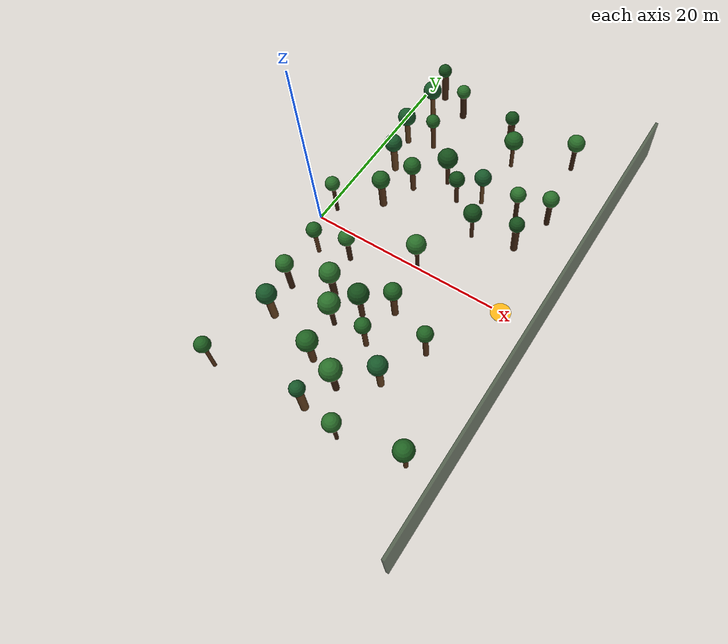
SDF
<sdf version="1.6">
 <world name="ego_forest_50x50x5">
  <include><uri>model://sun</uri></include>
  <model name="east_boundary">
   <static>true</static>
   <pose>24.850 0.000 2.500 0 0 0</pose>
   <link name="link">
    <collision name="collision"><geometry><box><size>0.300 50.000 5.000</size></box></geometry></collision>
    <visual name="visual">
     <geometry><box><size>0.300 50.000 5.000</size></box></geometry>
     <material><ambient>0.080 0.160 0.070 1.000</ambient><diffuse>0.080 0.160 0.070 1.000</diffuse></material>
     <transparency>0.35</transparency>
    </visual>
   </link>
  </model>
  <model name="east_edge_goal_marker">
   <static>true</static>
   <pose>21.000 0.000 0.006 0 0 0</pose>
   <link name="link">
    <visual name="visual">
     <geometry><cylinder><radius>1.0</radius><length>0.01</length></cylinder></geometry>
     <material><ambient>0.95 0.68 0.08 1</ambient><diffuse>0.95 0.68 0.08 1</diffuse></material>
    </visual>
   </link>
  </model>
  <model name="tree_001">
   <static>true</static>
   <pose>18.539 7.010 0 0 0 0</pose>
   <link name="tree_link">
    <collision name="trunk_collision">
     <pose>0 0 2.312 0 0 0</pose>
     <geometry><cylinder><radius>0.361</radius><length>4.624</length></cylinder></geometry>
    </collision>
    <visual name="trunk_visual">
     <pose>0 0 2.312 0 0 0</pose>
     <geometry><cylinder><radius>0.361</radius><length>4.624</length></cylinder></geometry>
     <material><ambient>0.290 0.160 0.080 1.000</ambient><diffuse>0.290 0.160 0.080 1.000</diffuse></material>
    </visual>
    <visual name="crown_visual">
     <pose>0 0 4.074 0 0 0</pose>
     <geometry><sphere><radius>0.776</radius></sphere></geometry>
     <material><ambient>0.080 0.300 0.100 1.000</ambient><diffuse>0.080 0.300 0.100 1.000</diffuse></material>
    </visual>
   </link>
  </model>
  <model name="tree_002">
   <static>true</static>
   <pose>12.092 -9.422 0 0 0 0</pose>
   <link name="tree_link">
    <collision name="trunk_collision">
     <pose>0 0 2.164 0 0 0</pose>
     <geometry><cylinder><radius>0.254</radius><length>4.328</length></cylinder></geometry>
    </collision>
    <visual name="trunk_visual">
     <pose>0 0 2.164 0 0 0</pose>
     <geometry><cylinder><radius>0.254</radius><length>4.328</length></cylinder></geometry>
     <material><ambient>0.360 0.210 0.100 1.000</ambient><diffuse>0.360 0.210 0.100 1.000</diffuse></material>
    </visual>
    <visual name="crown_visual">
     <pose>0 0 3.778 0 0 0</pose>
     <geometry><sphere><radius>0.774</radius></sphere></geometry>
     <material><ambient>0.120 0.380 0.130 1.000</ambient><diffuse>0.120 0.380 0.130 1.000</diffuse></material>
    </visual>
   </link>
  </model>
  <model name="tree_003">
   <static>true</static>
   <pose>5.260 19.407 0 0 0 0</pose>
   <link name="tree_link">
    <collision name="trunk_collision">
     <pose>0 0 2.167 0 0 0</pose>
     <geometry><cylinder><radius>0.351</radius><length>4.334</length></cylinder></geometry>
    </collision>
    <visual name="trunk_visual">
     <pose>0 0 2.167 0 0 0</pose>
     <geometry><cylinder><radius>0.351</radius><length>4.334</length></cylinder></geometry>
     <material><ambient>0.240 0.130 0.060 1.000</ambient><diffuse>0.240 0.130 0.060 1.000</diffuse></material>
    </visual>
    <visual name="crown_visual">
     <pose>0 0 3.784 0 0 0</pose>
     <geometry><sphere><radius>0.731</radius></sphere></geometry>
     <material><ambient>0.160 0.430 0.160 1.000</ambient><diffuse>0.160 0.430 0.160 1.000</diffuse></material>
    </visual>
   </link>
  </model>
  <model name="tree_006">
   <static>true</static>
   <pose>17.306 -7.336 0 0 0 0</pose>
   <link name="tree_link">
    <collision name="trunk_collision">
     <pose>0 0 2.280 0 0 0</pose>
     <geometry><cylinder><radius>0.265</radius><length>4.559</length></cylinder></geometry>
    </collision>
    <visual name="trunk_visual">
     <pose>0 0 2.280 0 0 0</pose>
     <geometry><cylinder><radius>0.265</radius><length>4.559</length></cylinder></geometry>
     <material><ambient>0.360 0.210 0.100 1.000</ambient><diffuse>0.360 0.210 0.100 1.000</diffuse></material>
    </visual>
    <visual name="crown_visual">
     <pose>0 0 4.009 0 0 0</pose>
     <geometry><sphere><radius>0.777</radius></sphere></geometry>
     <material><ambient>0.120 0.380 0.130 1.000</ambient><diffuse>0.120 0.380 0.130 1.000</diffuse></material>
    </visual>
   </link>
  </model>
  <model name="tree_008">
   <static>true</static>
   <pose>10.973 -17.323 0 0 0 0</pose>
   <link name="tree_link">
    <collision name="trunk_collision">
     <pose>0 0 2.387 0 0 0</pose>
     <geometry><cylinder><radius>0.377</radius><length>4.774</length></cylinder></geometry>
    </collision>
    <visual name="trunk_visual">
     <pose>0 0 2.387 0 0 0</pose>
     <geometry><cylinder><radius>0.377</radius><length>4.774</length></cylinder></geometry>
     <material><ambient>0.420 0.270 0.130 1.000</ambient><diffuse>0.420 0.270 0.130 1.000</diffuse></material>
    </visual>
    <visual name="crown_visual">
     <pose>0 0 4.224 0 0 0</pose>
     <geometry><sphere><radius>0.726</radius></sphere></geometry>
     <material><ambient>0.090 0.340 0.160 1.000</ambient><diffuse>0.090 0.340 0.160 1.000</diffuse></material>
    </visual>
   </link>
  </model>
  <model name="tree_012">
   <static>true</static>
   <pose>2.064 13.158 0 0 0 0</pose>
   <link name="tree_link">
    <collision name="trunk_collision">
     <pose>0 0 2.213 0 0 0</pose>
     <geometry><cylinder><radius>0.291</radius><length>4.426</length></cylinder></geometry>
    </collision>
    <visual name="trunk_visual">
     <pose>0 0 2.213 0 0 0</pose>
     <geometry><cylinder><radius>0.291</radius><length>4.426</length></cylinder></geometry>
     <material><ambient>0.420 0.270 0.130 1.000</ambient><diffuse>0.420 0.270 0.130 1.000</diffuse></material>
    </visual>
    <visual name="crown_visual">
     <pose>0 0 3.876 0 0 0</pose>
     <geometry><sphere><radius>0.937</radius></sphere></geometry>
     <material><ambient>0.090 0.340 0.160 1.000</ambient><diffuse>0.090 0.340 0.160 1.000</diffuse></material>
    </visual>
   </link>
  </model>
  <model name="tree_022">
   <static>true</static>
   <pose>4.446 4.775 0 0 0 0</pose>
   <link name="tree_link">
    <collision name="trunk_collision">
     <pose>0 0 2.256 0 0 0</pose>
     <geometry><cylinder><radius>0.369</radius><length>4.512</length></cylinder></geometry>
    </collision>
    <visual name="trunk_visual">
     <pose>0 0 2.256 0 0 0</pose>
     <geometry><cylinder><radius>0.369</radius><length>4.512</length></cylinder></geometry>
     <material><ambient>0.360 0.210 0.100 1.000</ambient><diffuse>0.360 0.210 0.100 1.000</diffuse></material>
    </visual>
    <visual name="crown_visual">
     <pose>0 0 3.962 0 0 0</pose>
     <geometry><sphere><radius>0.907</radius></sphere></geometry>
     <material><ambient>0.120 0.380 0.130 1.000</ambient><diffuse>0.120 0.380 0.130 1.000</diffuse></material>
    </visual>
   </link>
  </model>
  <model name="tree_023">
   <static>true</static>
   <pose>0.818 1.703 0 0 0 0</pose>
   <link name="tree_link">
    <collision name="trunk_collision">
     <pose>0 0 2.425 0 0 0</pose>
     <geometry><cylinder><radius>0.203</radius><length>4.850</length></cylinder></geometry>
    </collision>
    <visual name="trunk_visual">
     <pose>0 0 2.425 0 0 0</pose>
     <geometry><cylinder><radius>0.203</radius><length>4.850</length></cylinder></geometry>
     <material><ambient>0.240 0.130 0.060 1.000</ambient><diffuse>0.240 0.130 0.060 1.000</diffuse></material>
    </visual>
    <visual name="crown_visual">
     <pose>0 0 4.267 0 0 0</pose>
     <geometry><sphere><radius>0.733</radius></sphere></geometry>
     <material><ambient>0.160 0.430 0.160 1.000</ambient><diffuse>0.160 0.430 0.160 1.000</diffuse></material>
    </visual>
   </link>
  </model>
  <model name="tree_024">
   <static>true</static>
   <pose>2.426 17.642 0 0 0 0</pose>
   <link name="tree_link">
    <collision name="trunk_collision">
     <pose>0 0 2.457 0 0 0</pose>
     <geometry><cylinder><radius>0.273</radius><length>4.914</length></cylinder></geometry>
    </collision>
    <visual name="trunk_visual">
     <pose>0 0 2.457 0 0 0</pose>
     <geometry><cylinder><radius>0.273</radius><length>4.914</length></cylinder></geometry>
     <material><ambient>0.420 0.270 0.130 1.000</ambient><diffuse>0.420 0.270 0.130 1.000</diffuse></material>
    </visual>
    <visual name="crown_visual">
     <pose>0 0 4.040 0 0 0</pose>
     <geometry><sphere><radius>0.960</radius></sphere></geometry>
     <material><ambient>0.090 0.340 0.160 1.000</ambient><diffuse>0.090 0.340 0.160 1.000</diffuse></material>
    </visual>
   </link>
  </model>
  <model name="tree_027">
   <static>true</static>
   <pose>11.479 0.292 0 0 0 0</pose>
   <link name="tree_link">
    <collision name="trunk_collision">
     <pose>0 0 2.146 0 0 0</pose>
     <geometry><cylinder><radius>0.199</radius><length>4.291</length></cylinder></geometry>
    </collision>
    <visual name="trunk_visual">
     <pose>0 0 2.146 0 0 0</pose>
     <geometry><cylinder><radius>0.199</radius><length>4.291</length></cylinder></geometry>
     <material><ambient>0.240 0.130 0.060 1.000</ambient><diffuse>0.240 0.130 0.060 1.000</diffuse></material>
    </visual>
    <visual name="crown_visual">
     <pose>0 0 3.741 0 0 0</pose>
     <geometry><sphere><radius>0.969</radius></sphere></geometry>
     <material><ambient>0.160 0.430 0.160 1.000</ambient><diffuse>0.160 0.430 0.160 1.000</diffuse></material>
    </visual>
   </link>
  </model>
  <model name="tree_029">
   <static>true</static>
   <pose>14.214 6.063 0 0 0 0</pose>
   <link name="tree_link">
    <collision name="trunk_collision">
     <pose>0 0 2.226 0 0 0</pose>
     <geometry><cylinder><radius>0.203</radius><length>4.453</length></cylinder></geometry>
    </collision>
    <visual name="trunk_visual">
     <pose>0 0 2.226 0 0 0</pose>
     <geometry><cylinder><radius>0.203</radius><length>4.453</length></cylinder></geometry>
     <material><ambient>0.290 0.160 0.080 1.000</ambient><diffuse>0.290 0.160 0.080 1.000</diffuse></material>
    </visual>
    <visual name="crown_visual">
     <pose>0 0 3.903 0 0 0</pose>
     <geometry><sphere><radius>0.914</radius></sphere></geometry>
     <material><ambient>0.080 0.300 0.100 1.000</ambient><diffuse>0.080 0.300 0.100 1.000</diffuse></material>
    </visual>
   </link>
  </model>
  <model name="tree_030">
   <static>true</static>
   <pose>13.200 16.079 0 0 0 0</pose>
   <link name="tree_link">
    <collision name="trunk_collision">
     <pose>0 0 2.247 0 0 0</pose>
     <geometry><cylinder><radius>0.206</radius><length>4.494</length></cylinder></geometry>
    </collision>
    <visual name="trunk_visual">
     <pose>0 0 2.247 0 0 0</pose>
     <geometry><cylinder><radius>0.206</radius><length>4.494</length></cylinder></geometry>
     <material><ambient>0.360 0.210 0.100 1.000</ambient><diffuse>0.360 0.210 0.100 1.000</diffuse></material>
    </visual>
    <visual name="crown_visual">
     <pose>0 0 3.944 0 0 0</pose>
     <geometry><sphere><radius>0.965</radius></sphere></geometry>
     <material><ambient>0.120 0.380 0.130 1.000</ambient><diffuse>0.120 0.380 0.130 1.000</diffuse></material>
    </visual>
   </link>
  </model>
  <model name="tree_031">
   <static>true</static>
   <pose>6.479 -6.604 0 0 0 0</pose>
   <link name="tree_link">
    <collision name="trunk_collision">
     <pose>0 0 2.259 0 0 0</pose>
     <geometry><cylinder><radius>0.345</radius><length>4.517</length></cylinder></geometry>
    </collision>
    <visual name="trunk_visual">
     <pose>0 0 2.259 0 0 0</pose>
     <geometry><cylinder><radius>0.345</radius><length>4.517</length></cylinder></geometry>
     <material><ambient>0.240 0.130 0.060 1.000</ambient><diffuse>0.240 0.130 0.060 1.000</diffuse></material>
    </visual>
    <visual name="crown_visual">
     <pose>0 0 3.967 0 0 0</pose>
     <geometry><sphere><radius>1.006</radius></sphere></geometry>
     <material><ambient>0.160 0.430 0.160 1.000</ambient><diffuse>0.160 0.430 0.160 1.000</diffuse></material>
    </visual>
   </link>
  </model>
  <model name="tree_034">
   <static>true</static>
   <pose>1.554 -18.349 0 0 0 0</pose>
   <link name="tree_link">
    <collision name="trunk_collision">
     <pose>0 0 2.435 0 0 0</pose>
     <geometry><cylinder><radius>0.181</radius><length>4.871</length></cylinder></geometry>
    </collision>
    <visual name="trunk_visual">
     <pose>0 0 2.435 0 0 0</pose>
     <geometry><cylinder><radius>0.181</radius><length>4.871</length></cylinder></geometry>
     <material><ambient>0.360 0.210 0.100 1.000</ambient><diffuse>0.360 0.210 0.100 1.000</diffuse></material>
    </visual>
    <visual name="crown_visual">
     <pose>0 0 4.243 0 0 0</pose>
     <geometry><sphere><radius>0.757</radius></sphere></geometry>
     <material><ambient>0.120 0.380 0.130 1.000</ambient><diffuse>0.120 0.380 0.130 1.000</diffuse></material>
    </visual>
   </link>
  </model>
  <model name="tree_035">
   <static>true</static>
   <pose>12.256 -14.398 0 0 0 0</pose>
   <link name="tree_link">
    <collision name="trunk_collision">
     <pose>0 0 2.256 0 0 0</pose>
     <geometry><cylinder><radius>0.316</radius><length>4.512</length></cylinder></geometry>
    </collision>
    <visual name="trunk_visual">
     <pose>0 0 2.256 0 0 0</pose>
     <geometry><cylinder><radius>0.316</radius><length>4.512</length></cylinder></geometry>
     <material><ambient>0.240 0.130 0.060 1.000</ambient><diffuse>0.240 0.130 0.060 1.000</diffuse></material>
    </visual>
    <visual name="crown_visual">
     <pose>0 0 3.961 0 0 0</pose>
     <geometry><sphere><radius>1.039</radius></sphere></geometry>
     <material><ambient>0.160 0.430 0.160 1.000</ambient><diffuse>0.160 0.430 0.160 1.000</diffuse></material>
    </visual>
   </link>
  </model>
  <model name="tree_037">
   <static>true</static>
   <pose>11.695 18.441 0 0 0 0</pose>
   <link name="tree_link">
    <collision name="trunk_collision">
     <pose>0 0 2.403 0 0 0</pose>
     <geometry><cylinder><radius>0.370</radius><length>4.805</length></cylinder></geometry>
    </collision>
    <visual name="trunk_visual">
     <pose>0 0 2.403 0 0 0</pose>
     <geometry><cylinder><radius>0.370</radius><length>4.805</length></cylinder></geometry>
     <material><ambient>0.290 0.160 0.080 1.000</ambient><diffuse>0.290 0.160 0.080 1.000</diffuse></material>
    </visual>
    <visual name="crown_visual">
     <pose>0 0 4.255 0 0 0</pose>
     <geometry><sphere><radius>0.731</radius></sphere></geometry>
     <material><ambient>0.080 0.300 0.100 1.000</ambient><diffuse>0.080 0.300 0.100 1.000</diffuse></material>
    </visual>
   </link>
  </model>
  <model name="tree_038">
   <static>true</static>
   <pose>2.254 -3.393 0 0 0 0</pose>
   <link name="tree_link">
    <collision name="trunk_collision">
     <pose>0 0 2.122 0 0 0</pose>
     <geometry><cylinder><radius>0.210</radius><length>4.244</length></cylinder></geometry>
    </collision>
    <visual name="trunk_visual">
     <pose>0 0 2.122 0 0 0</pose>
     <geometry><cylinder><radius>0.210</radius><length>4.244</length></cylinder></geometry>
     <material><ambient>0.360 0.210 0.100 1.000</ambient><diffuse>0.360 0.210 0.100 1.000</diffuse></material>
    </visual>
    <visual name="crown_visual">
     <pose>0 0 3.694 0 0 0</pose>
     <geometry><sphere><radius>0.766</radius></sphere></geometry>
     <material><ambient>0.120 0.380 0.130 1.000</ambient><diffuse>0.120 0.380 0.130 1.000</diffuse></material>
    </visual>
   </link>
  </model>
  <model name="tree_039">
   <static>true</static>
   <pose>18.833 19.015 0 0 0 0</pose>
   <link name="tree_link">
    <collision name="trunk_collision">
     <pose>0 0 2.311 0 0 0</pose>
     <geometry><cylinder><radius>0.249</radius><length>4.622</length></cylinder></geometry>
    </collision>
    <visual name="trunk_visual">
     <pose>0 0 2.311 0 0 0</pose>
     <geometry><cylinder><radius>0.249</radius><length>4.622</length></cylinder></geometry>
     <material><ambient>0.240 0.130 0.060 1.000</ambient><diffuse>0.240 0.130 0.060 1.000</diffuse></material>
    </visual>
    <visual name="crown_visual">
     <pose>0 0 4.072 0 0 0</pose>
     <geometry><sphere><radius>0.901</radius></sphere></geometry>
     <material><ambient>0.160 0.430 0.160 1.000</ambient><diffuse>0.160 0.430 0.160 1.000</diffuse></material>
    </visual>
   </link>
  </model>
  <model name="tree_040">
   <static>true</static>
   <pose>3.000 -11.420 0 0 0 0</pose>
   <link name="tree_link">
    <collision name="trunk_collision">
     <pose>0 0 2.355 0 0 0</pose>
     <geometry><cylinder><radius>0.373</radius><length>4.709</length></cylinder></geometry>
    </collision>
    <visual name="trunk_visual">
     <pose>0 0 2.355 0 0 0</pose>
     <geometry><cylinder><radius>0.373</radius><length>4.709</length></cylinder></geometry>
     <material><ambient>0.420 0.270 0.130 1.000</ambient><diffuse>0.420 0.270 0.130 1.000</diffuse></material>
    </visual>
    <visual name="crown_visual">
     <pose>0 0 4.047 0 0 0</pose>
     <geometry><sphere><radius>0.953</radius></sphere></geometry>
     <material><ambient>0.090 0.340 0.160 1.000</ambient><diffuse>0.090 0.340 0.160 1.000</diffuse></material>
    </visual>
   </link>
  </model>
  <model name="tree_045">
   <static>true</static>
   <pose>10.008 -7.058 0 0 0 0</pose>
   <link name="tree_link">
    <collision name="trunk_collision">
     <pose>0 0 2.429 0 0 0</pose>
     <geometry><cylinder><radius>0.285</radius><length>4.858</length></cylinder></geometry>
    </collision>
    <visual name="trunk_visual">
     <pose>0 0 2.429 0 0 0</pose>
     <geometry><cylinder><radius>0.285</radius><length>4.858</length></cylinder></geometry>
     <material><ambient>0.290 0.160 0.080 1.000</ambient><diffuse>0.290 0.160 0.080 1.000</diffuse></material>
    </visual>
    <visual name="crown_visual">
     <pose>0 0 3.986 0 0 0</pose>
     <geometry><sphere><radius>1.014</radius></sphere></geometry>
     <material><ambient>0.080 0.300 0.100 1.000</ambient><diffuse>0.080 0.300 0.100 1.000</diffuse></material>
    </visual>
   </link>
  </model>
  <model name="tree_046">
   <static>true</static>
   <pose>12.547 -5.282 0 0 0 0</pose>
   <link name="tree_link">
    <collision name="trunk_collision">
     <pose>0 0 2.310 0 0 0</pose>
     <geometry><cylinder><radius>0.324</radius><length>4.620</length></cylinder></geometry>
    </collision>
    <visual name="trunk_visual">
     <pose>0 0 2.310 0 0 0</pose>
     <geometry><cylinder><radius>0.324</radius><length>4.620</length></cylinder></geometry>
     <material><ambient>0.360 0.210 0.100 1.000</ambient><diffuse>0.360 0.210 0.100 1.000</diffuse></material>
    </visual>
    <visual name="crown_visual">
     <pose>0 0 4.070 0 0 0</pose>
     <geometry><sphere><radius>0.869</radius></sphere></geometry>
     <material><ambient>0.120 0.380 0.130 1.000</ambient><diffuse>0.120 0.380 0.130 1.000</diffuse></material>
    </visual>
   </link>
  </model>
  <model name="tree_047">
   <static>true</static>
   <pose>19.898 11.395 0 0 0 0</pose>
   <link name="tree_link">
    <collision name="trunk_collision">
     <pose>0 0 2.297 0 0 0</pose>
     <geometry><cylinder><radius>0.288</radius><length>4.593</length></cylinder></geometry>
    </collision>
    <visual name="trunk_visual">
     <pose>0 0 2.297 0 0 0</pose>
     <geometry><cylinder><radius>0.288</radius><length>4.593</length></cylinder></geometry>
     <material><ambient>0.240 0.130 0.060 1.000</ambient><diffuse>0.240 0.130 0.060 1.000</diffuse></material>
    </visual>
    <visual name="crown_visual">
     <pose>0 0 4.043 0 0 0</pose>
     <geometry><sphere><radius>0.831</radius></sphere></geometry>
     <material><ambient>0.160 0.430 0.160 1.000</ambient><diffuse>0.160 0.430 0.160 1.000</diffuse></material>
    </visual>
   </link>
  </model>
  <model name="tree_049">
   <static>true</static>
   <pose>2.086 20.762 0 0 0 0</pose>
   <link name="tree_link">
    <collision name="trunk_collision">
     <pose>0 0 2.325 0 0 0</pose>
     <geometry><cylinder><radius>0.380</radius><length>4.650</length></cylinder></geometry>
    </collision>
    <visual name="trunk_visual">
     <pose>0 0 2.325 0 0 0</pose>
     <geometry><cylinder><radius>0.380</radius><length>4.650</length></cylinder></geometry>
     <material><ambient>0.290 0.160 0.080 1.000</ambient><diffuse>0.290 0.160 0.080 1.000</diffuse></material>
    </visual>
    <visual name="crown_visual">
     <pose>0 0 4.100 0 0 0</pose>
     <geometry><sphere><radius>0.721</radius></sphere></geometry>
     <material><ambient>0.080 0.300 0.100 1.000</ambient><diffuse>0.080 0.300 0.100 1.000</diffuse></material>
    </visual>
   </link>
  </model>
  <model name="tree_051">
   <static>true</static>
   <pose>16.969 10.096 0 0 0 0</pose>
   <link name="tree_link">
    <collision name="trunk_collision">
     <pose>0 0 2.478 0 0 0</pose>
     <geometry><cylinder><radius>0.247</radius><length>4.955</length></cylinder></geometry>
    </collision>
    <visual name="trunk_visual">
     <pose>0 0 2.478 0 0 0</pose>
     <geometry><cylinder><radius>0.247</radius><length>4.955</length></cylinder></geometry>
     <material><ambient>0.240 0.130 0.060 1.000</ambient><diffuse>0.240 0.130 0.060 1.000</diffuse></material>
    </visual>
    <visual name="crown_visual">
     <pose>0 0 4.202 0 0 0</pose>
     <geometry><sphere><radius>0.798</radius></sphere></geometry>
     <material><ambient>0.160 0.430 0.160 1.000</ambient><diffuse>0.160 0.430 0.160 1.000</diffuse></material>
    </visual>
   </link>
  </model>
  <model name="tree_052">
   <static>true</static>
   <pose>2.929 9.301 0 0 0 0</pose>
   <link name="tree_link">
    <collision name="trunk_collision">
     <pose>0 0 2.383 0 0 0</pose>
     <geometry><cylinder><radius>0.359</radius><length>4.766</length></cylinder></geometry>
    </collision>
    <visual name="trunk_visual">
     <pose>0 0 2.383 0 0 0</pose>
     <geometry><cylinder><radius>0.359</radius><length>4.766</length></cylinder></geometry>
     <material><ambient>0.420 0.270 0.130 1.000</ambient><diffuse>0.420 0.270 0.130 1.000</diffuse></material>
    </visual>
    <visual name="crown_visual">
     <pose>0 0 4.085 0 0 0</pose>
     <geometry><sphere><radius>0.915</radius></sphere></geometry>
     <material><ambient>0.090 0.340 0.160 1.000</ambient><diffuse>0.090 0.340 0.160 1.000</diffuse></material>
    </visual>
   </link>
  </model>
  <model name="tree_055">
   <static>true</static>
   <pose>8.313 -9.201 0 0 0 0</pose>
   <link name="tree_link">
    <collision name="trunk_collision">
     <pose>0 0 2.388 0 0 0</pose>
     <geometry><cylinder><radius>0.238</radius><length>4.775</length></cylinder></geometry>
    </collision>
    <visual name="trunk_visual">
     <pose>0 0 2.388 0 0 0</pose>
     <geometry><cylinder><radius>0.238</radius><length>4.775</length></cylinder></geometry>
     <material><ambient>0.240 0.130 0.060 1.000</ambient><diffuse>0.240 0.130 0.060 1.000</diffuse></material>
    </visual>
    <visual name="crown_visual">
     <pose>0 0 3.952 0 0 0</pose>
     <geometry><sphere><radius>1.048</radius></sphere></geometry>
     <material><ambient>0.160 0.430 0.160 1.000</ambient><diffuse>0.160 0.430 0.160 1.000</diffuse></material>
    </visual>
   </link>
  </model>
  <model name="tree_056">
   <static>true</static>
   <pose>15.450 -11.963 0 0 0 0</pose>
   <link name="tree_link">
    <collision name="trunk_collision">
     <pose>0 0 2.238 0 0 0</pose>
     <geometry><cylinder><radius>0.329</radius><length>4.477</length></cylinder></geometry>
    </collision>
    <visual name="trunk_visual">
     <pose>0 0 2.238 0 0 0</pose>
     <geometry><cylinder><radius>0.329</radius><length>4.477</length></cylinder></geometry>
     <material><ambient>0.420 0.270 0.130 1.000</ambient><diffuse>0.420 0.270 0.130 1.000</diffuse></material>
    </visual>
    <visual name="crown_visual">
     <pose>0 0 3.927 0 0 0</pose>
     <geometry><sphere><radius>0.928</radius></sphere></geometry>
     <material><ambient>0.090 0.340 0.160 1.000</ambient><diffuse>0.090 0.340 0.160 1.000</diffuse></material>
    </visual>
   </link>
  </model>
  <model name="tree_058">
   <static>true</static>
   <pose>4.793 13.960 0 0 0 0</pose>
   <link name="tree_link">
    <collision name="trunk_collision">
     <pose>0 0 2.281 0 0 0</pose>
     <geometry><cylinder><radius>0.257</radius><length>4.561</length></cylinder></geometry>
    </collision>
    <visual name="trunk_visual">
     <pose>0 0 2.281 0 0 0</pose>
     <geometry><cylinder><radius>0.257</radius><length>4.561</length></cylinder></geometry>
     <material><ambient>0.360 0.210 0.100 1.000</ambient><diffuse>0.360 0.210 0.100 1.000</diffuse></material>
    </visual>
    <visual name="crown_visual">
     <pose>0 0 4.011 0 0 0</pose>
     <geometry><sphere><radius>0.723</radius></sphere></geometry>
     <material><ambient>0.120 0.380 0.130 1.000</ambient><diffuse>0.120 0.380 0.130 1.000</diffuse></material>
    </visual>
   </link>
  </model>
  <model name="tree_059">
   <static>true</static>
   <pose>15.007 -18.105 0 0 0 0</pose>
   <link name="tree_link">
    <collision name="trunk_collision">
     <pose>0 0 2.135 0 0 0</pose>
     <geometry><cylinder><radius>0.186</radius><length>4.270</length></cylinder></geometry>
    </collision>
    <visual name="trunk_visual">
     <pose>0 0 2.135 0 0 0</pose>
     <geometry><cylinder><radius>0.186</radius><length>4.270</length></cylinder></geometry>
     <material><ambient>0.240 0.130 0.060 1.000</ambient><diffuse>0.240 0.130 0.060 1.000</diffuse></material>
    </visual>
    <visual name="crown_visual">
     <pose>0 0 3.720 0 0 0</pose>
     <geometry><sphere><radius>0.851</radius></sphere></geometry>
     <material><ambient>0.160 0.430 0.160 1.000</ambient><diffuse>0.160 0.430 0.160 1.000</diffuse></material>
    </visual>
   </link>
  </model>
  <model name="tree_061">
   <static>true</static>
   <pose>10.669 9.005 0 0 0 0</pose>
   <link name="tree_link">
    <collision name="trunk_collision">
     <pose>0 0 2.076 0 0 0</pose>
     <geometry><cylinder><radius>0.231</radius><length>4.151</length></cylinder></geometry>
    </collision>
    <visual name="trunk_visual">
     <pose>0 0 2.076 0 0 0</pose>
     <geometry><cylinder><radius>0.231</radius><length>4.151</length></cylinder></geometry>
     <material><ambient>0.290 0.160 0.080 1.000</ambient><diffuse>0.290 0.160 0.080 1.000</diffuse></material>
    </visual>
    <visual name="crown_visual">
     <pose>0 0 3.601 0 0 0</pose>
     <geometry><sphere><radius>0.822</radius></sphere></geometry>
     <material><ambient>0.080 0.300 0.100 1.000</ambient><diffuse>0.080 0.300 0.100 1.000</diffuse></material>
    </visual>
   </link>
  </model>
  <model name="tree_062">
   <static>true</static>
   <pose>6.001 8.051 0 0 0 0</pose>
   <link name="tree_link">
    <collision name="trunk_collision">
     <pose>0 0 2.114 0 0 0</pose>
     <geometry><cylinder><radius>0.282</radius><length>4.228</length></cylinder></geometry>
    </collision>
    <visual name="trunk_visual">
     <pose>0 0 2.114 0 0 0</pose>
     <geometry><cylinder><radius>0.282</radius><length>4.228</length></cylinder></geometry>
     <material><ambient>0.360 0.210 0.100 1.000</ambient><diffuse>0.360 0.210 0.100 1.000</diffuse></material>
    </visual>
    <visual name="crown_visual">
     <pose>0 0 3.678 0 0 0</pose>
     <geometry><sphere><radius>0.900</radius></sphere></geometry>
     <material><ambient>0.120 0.380 0.130 1.000</ambient><diffuse>0.120 0.380 0.130 1.000</diffuse></material>
    </visual>
   </link>
  </model>
  <model name="tree_063">
   <static>true</static>
   <pose>5.420 -2.515 0 0 0 0</pose>
   <link name="tree_link">
    <collision name="trunk_collision">
     <pose>0 0 2.112 0 0 0</pose>
     <geometry><cylinder><radius>0.255</radius><length>4.223</length></cylinder></geometry>
    </collision>
    <visual name="trunk_visual">
     <pose>0 0 2.112 0 0 0</pose>
     <geometry><cylinder><radius>0.255</radius><length>4.223</length></cylinder></geometry>
     <material><ambient>0.240 0.130 0.060 1.000</ambient><diffuse>0.240 0.130 0.060 1.000</diffuse></material>
    </visual>
    <visual name="crown_visual">
     <pose>0 0 3.673 0 0 0</pose>
     <geometry><sphere><radius>0.812</radius></sphere></geometry>
     <material><ambient>0.160 0.430 0.160 1.000</ambient><diffuse>0.160 0.430 0.160 1.000</diffuse></material>
    </visual>
   </link>
  </model>
  <model name="tree_066">
   <static>true</static>
   <pose>21.439 -17.046 0 0 0 0</pose>
   <link name="tree_link">
    <collision name="trunk_collision">
     <pose>0 0 2.479 0 0 0</pose>
     <geometry><cylinder><radius>0.217</radius><length>4.958</length></cylinder></geometry>
    </collision>
    <visual name="trunk_visual">
     <pose>0 0 2.479 0 0 0</pose>
     <geometry><cylinder><radius>0.217</radius><length>4.958</length></cylinder></geometry>
     <material><ambient>0.360 0.210 0.100 1.000</ambient><diffuse>0.360 0.210 0.100 1.000</diffuse></material>
    </visual>
    <visual name="crown_visual">
     <pose>0 0 4.043 0 0 0</pose>
     <geometry><sphere><radius>0.957</radius></sphere></geometry>
     <material><ambient>0.120 0.380 0.130 1.000</ambient><diffuse>0.120 0.380 0.130 1.000</diffuse></material>
    </visual>
   </link>
  </model>
  <model name="tree_069">
   <static>true</static>
   <pose>8.662 10.552 0 0 0 0</pose>
   <link name="tree_link">
    <collision name="trunk_collision">
     <pose>0 0 2.302 0 0 0</pose>
     <geometry><cylinder><radius>0.219</radius><length>4.605</length></cylinder></geometry>
    </collision>
    <visual name="trunk_visual">
     <pose>0 0 2.302 0 0 0</pose>
     <geometry><cylinder><radius>0.219</radius><length>4.605</length></cylinder></geometry>
     <material><ambient>0.290 0.160 0.080 1.000</ambient><diffuse>0.290 0.160 0.080 1.000</diffuse></material>
    </visual>
    <visual name="crown_visual">
     <pose>0 0 3.959 0 0 0</pose>
     <geometry><sphere><radius>1.041</radius></sphere></geometry>
     <material><ambient>0.080 0.300 0.100 1.000</ambient><diffuse>0.080 0.300 0.100 1.000</diffuse></material>
    </visual>
   </link>
  </model>
  <model name="tree_070">
   <static>true</static>
   <pose>8.837 -13.191 0 0 0 0</pose>
   <link name="tree_link">
    <collision name="trunk_collision">
     <pose>0 0 2.176 0 0 0</pose>
     <geometry><cylinder><radius>0.342</radius><length>4.352</length></cylinder></geometry>
    </collision>
    <visual name="trunk_visual">
     <pose>0 0 2.176 0 0 0</pose>
     <geometry><cylinder><radius>0.342</radius><length>4.352</length></cylinder></geometry>
     <material><ambient>0.360 0.210 0.100 1.000</ambient><diffuse>0.360 0.210 0.100 1.000</diffuse></material>
    </visual>
    <visual name="crown_visual">
     <pose>0 0 3.802 0 0 0</pose>
     <geometry><sphere><radius>0.995</radius></sphere></geometry>
     <material><ambient>0.120 0.380 0.130 1.000</ambient><diffuse>0.120 0.380 0.130 1.000</diffuse></material>
    </visual>
   </link>
  </model>
  <model name="tree_071">
   <static>true</static>
   <pose>2.451 -8.049 0 0 0 0</pose>
   <link name="tree_link">
    <collision name="trunk_collision">
     <pose>0 0 2.367 0 0 0</pose>
     <geometry><cylinder><radius>0.296</radius><length>4.734</length></cylinder></geometry>
    </collision>
    <visual name="trunk_visual">
     <pose>0 0 2.367 0 0 0</pose>
     <geometry><cylinder><radius>0.296</radius><length>4.734</length></cylinder></geometry>
     <material><ambient>0.240 0.130 0.060 1.000</ambient><diffuse>0.240 0.130 0.060 1.000</diffuse></material>
    </visual>
    <visual name="crown_visual">
     <pose>0 0 4.146 0 0 0</pose>
     <geometry><sphere><radius>0.854</radius></sphere></geometry>
     <material><ambient>0.160 0.430 0.160 1.000</ambient><diffuse>0.160 0.430 0.160 1.000</diffuse></material>
    </visual>
   </link>
  </model>
  <model name="tree_072">
   <static>true</static>
   <pose>12.968 10.204 0 0 0 0</pose>
   <link name="tree_link">
    <collision name="trunk_collision">
     <pose>0 0 2.313 0 0 0</pose>
     <geometry><cylinder><radius>0.212</radius><length>4.626</length></cylinder></geometry>
    </collision>
    <visual name="trunk_visual">
     <pose>0 0 2.313 0 0 0</pose>
     <geometry><cylinder><radius>0.212</radius><length>4.626</length></cylinder></geometry>
     <material><ambient>0.420 0.270 0.130 1.000</ambient><diffuse>0.420 0.270 0.130 1.000</diffuse></material>
    </visual>
    <visual name="crown_visual">
     <pose>0 0 4.076 0 0 0</pose>
     <geometry><sphere><radius>0.860</radius></sphere></geometry>
     <material><ambient>0.090 0.340 0.160 1.000</ambient><diffuse>0.090 0.340 0.160 1.000</diffuse></material>
    </visual>
   </link>
  </model>
 </world>
</sdf>
